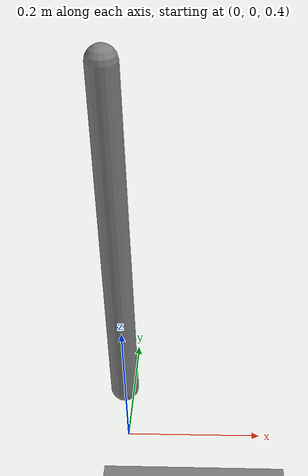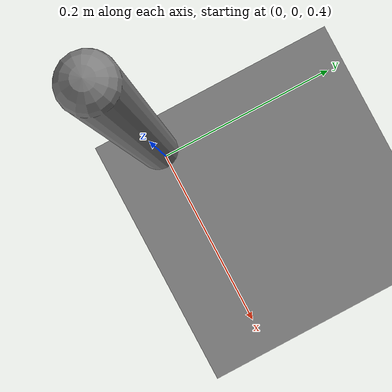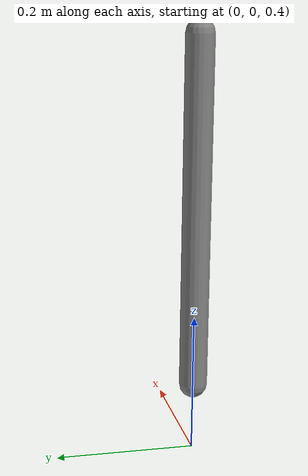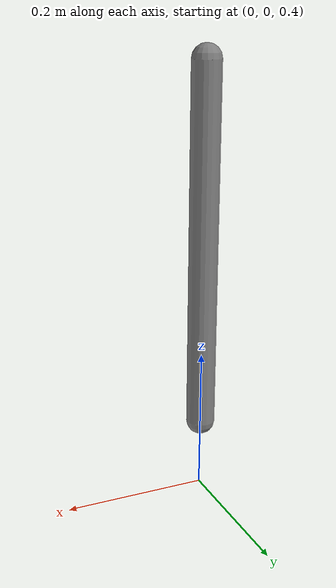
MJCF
<mujoco model="pendulum">
  <compiler angle="degree" eulerseq="xyz"/>
  <option timestep="0.001" gravity="0 0 -9.81" integrator="RK4" cone="elliptic" solver="CG"
          iterations="50" impratio="2"/>
  <worldbody>
    <geom name="floor" type="plane" size="5 5 0.1" friction="0.8 0.01 0.001"/>
    <body name="rod" pos="0 0 1">
      <joint name="hinge" type="hinge" axis="0 1 0" range="-90 90" damping="0.1" armature="0.01"/>
      <geom name="shaft" type="capsule" fromto="0 0 0 0 0 -0.5" size="0.02"/>
      <inertial pos="0 0 -0.25" mass="1.5" diaginertia="0.01 0.01 0.002"/>
      <site name="tip" pos="0 0 -0.5"/>
    </body>
  </worldbody>
</mujoco>
